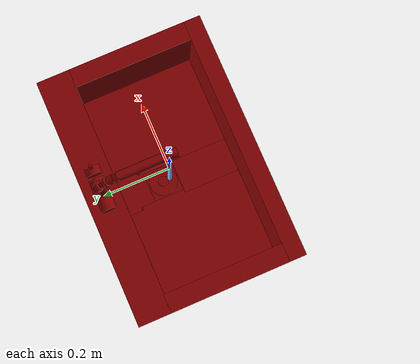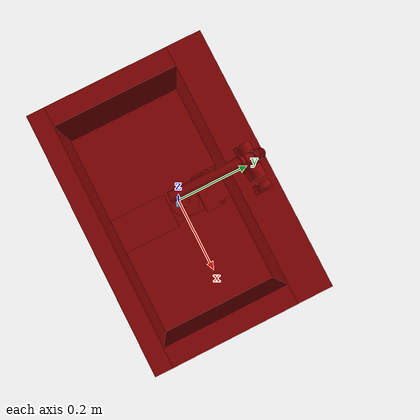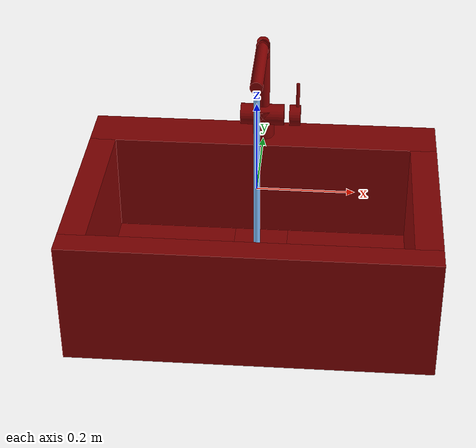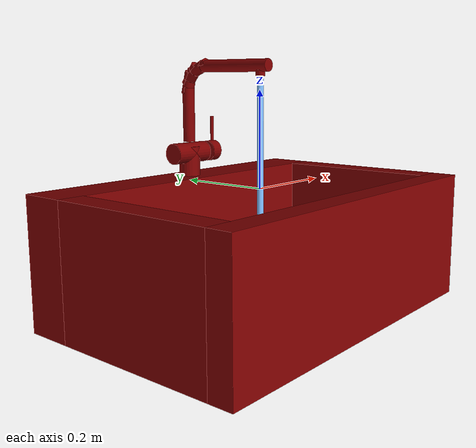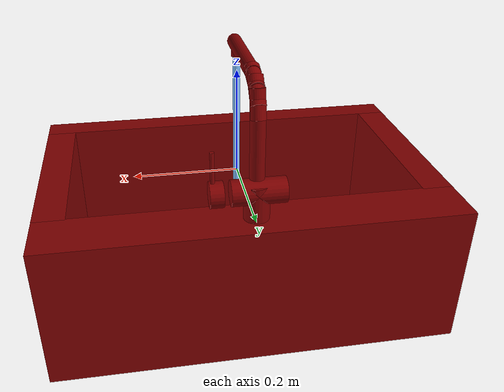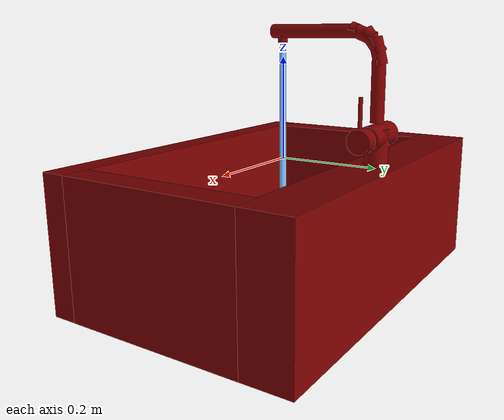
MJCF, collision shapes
<mujoco model="model">
  <compiler angle="radian"/>
  <asset>
    <mesh file="visuals/handle.obj" name="handle_vis"/>
    <mesh file="visuals/Body001.obj" name="Body001_vis"/>
    <mesh file="visuals/Funnel001.obj" name="Funnel001_vis"/>
    <mesh file="visuals/spout.obj" name="spout_vis"/>
    <texture file="visuals/T_BC001.png" name="Body001_material" type="2d"/>
    <material name="Body001_material" rgba="1 1 1 1.0" texture="Body001_material" shininess="0.4472135901451111" specular="0.3103448502657381"/>
    <texture file="visuals/T_BC001.png" name="handle_material" type="2d"/>
    <material name="handle_material" rgba="1 1 1 1.0" texture="handle_material" shininess="0.4472135901451111" specular="0.3103448502657381"/>
    <texture file="visuals/T_BC001.png" name="Funnel001_material" type="2d"/>
    <material name="Funnel001_material" rgba="1 1 1 1.0" texture="Funnel001_material" shininess="0.4472135901451111" specular="0.3103448502657381"/>
    <texture file="visuals/T_BC001.png" name="spout_material" type="2d"/>
    <material name="spout_material" rgba="1 1 1 1.0" texture="spout_material" shininess="0.4472135901451111" specular="0.3103448502657381"/>
  </asset>
  <default>
    <default class="visual">
      <geom conaffinity="0" contype="0" group="1" type="mesh"/>
    </default>
    <default class="collision">
      <geom group="0" rgba="0.5 0 0 0.5"/>
    </default>
    <default class="spawn">
      <geom group="0" rgba="1 1 1 0.5" contype="0" conaffinity="0"/>
      <site group="0" rgba="1 1 1 0.5"/>
    </default>
    <default class="region">
      <geom group="1" conaffinity="0" contype="0" rgba="0 1 0 0"/>
    </default>
  </default>
  <worldbody>
    <body>
      <body name="object">
        <geom mesh="Body001_vis" type="mesh" solimp="0.998 0.998 0.001" solref="0.001 1" density="100" friction="0.95 0.3 0.1" class="visual" material="Body001_material"/>
        <geom class="collision" type="box" pos="-0.000059 -0.229836 -0.124475" size="0.3755985498428345 0.025800518691539764 0.135511577129364" quat="1.0 0.0 0.0 0.0"/>
        <geom class="collision" type="box" pos="-0.000059 0.203459 -0.124475" size="0.3755985498428345 0.049860287457704544 0.135511577129364" quat="1.0 0.0 0.0 0.0"/>
        <geom class="collision" type="box" pos="-0.347380 -0.024492 -0.124475" size="0.028277456760406494 0.1806069165468216 0.135511577129364" quat="1.0 0.0 0.0 0.0"/>
        <geom class="collision" type="box" pos="0.347422 -0.024492 -0.124475" size="0.028277456760406494 0.1806069165468216 0.135511577129364" quat="1.0 0.0 0.0 0.0"/>
        <geom class="collision" type="box" pos="0.183398 -0.024492 -0.235666" size="0.13632935285568237 0.1806069165468216 0.02432072162628174" quat="1.0 0.0 0.0 0.0"/>
        <geom class="collision" type="box" pos="-0.183571 -0.024492 -0.235666" size="0.13606664538383484 0.1806069165468216 0.02432072162628174" quat="1.0 0.0 0.0 0.0"/>
        <geom class="collision" type="box" pos="0.000390 -0.115765 -0.235666" size="0.05863521993160248 0.0893343836069107 0.02432072162628174" quat="1.0 0.0 0.0 0.0"/>
        <geom class="collision" type="box" pos="0.000390 0.112380 -0.235666" size="0.05863521993160248 0.04373415559530258 0.02432072162628174" quat="1.0 0.0 0.0 0.0"/>
        <geom class="collision" type="cylinder" pos="0.000367 0.201165 0.042781" size="0.02263602614402771 0.032472364604473114" quat="1.0 0.0 0.0 0.0"/>
        <geom class="collision" type="box" pos="0.000390 0.024256 -0.244165" size="0.05863521993160248 0.055457234382629395 0.01582162082195282" quat="1.0 0.0 0.0 0.0"/>
        <geom class="collision" type="cylinder" pos="-0.002135 0.201165 0.061269" size="0.02263602614402771 0.04693588986992836" quat="0.7071068286895752 -0.0 0.7071067690849304 0.0"/>
        <body name="handle">
          <joint axis="1.0 0.0 0.0" pos="0.065637 0.201156 0.061663" limited="true" name="handle_joint_hinge_0" type="hinge" range="-0.7853981633974483 0.7853981633974483" damping="1" frictionloss="1" armature=".01" stiffness="0.05"/>
          <joint axis="0.0 1.0 0.0" pos="0.065637 0.201156 0.061663" limited="true" name="handle_joint_hinge_1" type="hinge" range="0.0 0.17453292519943295" damping="1" frictionloss="1" armature=".01" stiffness="0.05"/>
          <geom mesh="handle_vis" type="mesh" solimp="0.998 0.998 0.001" solref="0.001 1" density="100" friction="0.95 0.3 0.1" class="visual" material="handle_material"/>
          <geom class="collision" type="cylinder" pos="0.074238 0.201674 0.110344" size="0.0038201643619686365 0.027743283659219742" quat="1.0 0.0 0.0 0.0"/>
          <geom class="collision" type="cylinder" pos="0.068472 0.201165 0.061269" size="0.02263602614402771 0.011875688098371029" quat="0.7071068286895752 -0.0 0.7071067690849304 0.0"/>
        </body>
        <body name="Funnel001">
          <joint axis="0.0 0.0 1.0" pos="-0.000290 0.021436 -0.218481" limited="true" name="Funnel001_joint" range="0.0 0.05" type="slide" damping="1" frictionloss="1" armature=".01" stiffness="0.05"/>
          <geom mesh="Funnel001_vis" type="mesh" solimp="0.998 0.998 0.001" solref="0.001 1" density="100" friction="0.95 0.3 0.1" class="visual" material="Funnel001_material"/>
          <geom class="collision" type="cylinder" pos="-0.000366 0.020971 -0.216131" size="0.043843142688274384 0.0017247076611965895" quat="1.0 0.0 0.0 0.0"/>
          <geom class="collision" type="cylinder" pos="-0.000444 0.020600 -0.211584" size="0.015967193990945816 0.0028173860628157854" quat="1.0 0.0 0.0 0.0"/>
        </body>
        <body name="spout">
          <joint axis="0.0 0.0 1.0" pos="0.000417 0.201159 0.167300" limited="true" name="spout_joint" range="-1.0471975511965976 1.0471975511965976" type="hinge" damping="1" frictionloss="1" armature=".01" stiffness="0.05"/>
          <site type="cylinder" rgba="0.5 0.75 1 1" size="0.0066134752705693245 0.2378060519695282" pos="0.000400 -0.000896 -0.011254" name="water"/>
          <geom mesh="spout_vis" type="mesh" solimp="0.998 0.998 0.001" solref="0.001 1" density="100" friction="0.95 0.3 0.1" class="visual" material="spout_material"/>
          <geom class="collision" type="cylinder" pos="0.000617 0.200961 0.144497" size="0.012858516536653042 0.05865353345870972" quat="1.0 0.0 0.0 0.0"/>
          <geom class="collision" type="cylinder" pos="0.000426 -0.001005 0.232720" size="0.009285930544137955 0.0064205266535282135" quat="1.0 0.0 0.0 0.0"/>
          <geom class="collision" type="cylinder" pos="0.000617 0.198460 0.213083" size="0.012858516536653042 0.024497203528881073" quat="0.9920640587806702 0.12573324143886566 0.0 0.0"/>
          <geom class="collision" type="cylinder" pos="0.000617 0.188450 0.229898" size="0.012858516536653042 0.024497203528881073" quat="0.9472011923789978 0.32063984870910645 0.0 0.0"/>
          <geom class="collision" type="cylinder" pos="0.000617 0.167452 0.243586" size="0.012858516536653042 0.024497203528881073" quat="0.8263651132583618 0.5631347298622131 0.0 0.0"/>
          <geom class="collision" type="cylinder" pos="0.000617 0.069147 0.248131" size="0.012858516536653042 0.09095170348882675" quat="0.7071067094802856 0.7071068286895752 0.0 0.0"/>
        </body>
        <geom class="region" name="reg_main" type="box" pos="0.0 0.0 -0.1239055" size="0.374762 0.254413 0.1356115"/>
        <geom class="region" name="reg_basin" type="box" pos="-0.000839499999999993 -0.02673650000000001 -0.0984185" size="0.3085265 0.1699045 0.0977715"/>
      </body>
    </body>
  </worldbody>
  <actuator>
    <motor name="handle_joint_hinge_0_actuator" joint="handle_joint_hinge_0" gear="10"/>
    <motor name="handle_joint_hinge_1_actuator" joint="handle_joint_hinge_1" gear="10"/>
    <motor name="Funnel001_joint_actuator" joint="Funnel001_joint" gear="10"/>
    <motor name="spout_joint_actuator" joint="spout_joint" gear="10"/>
  </actuator>
</mujoco>
